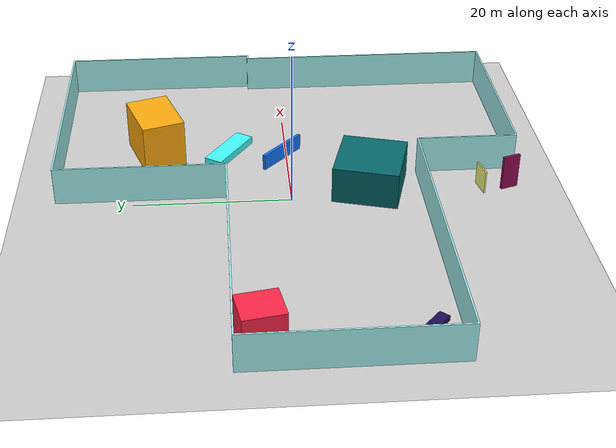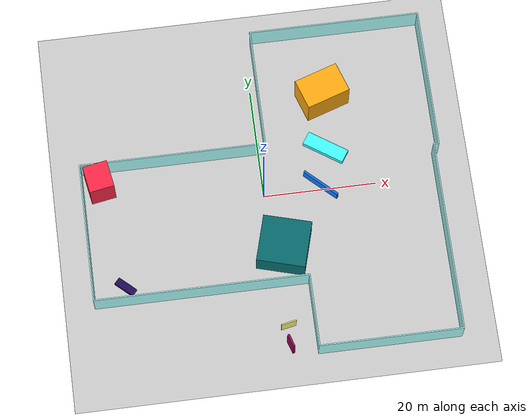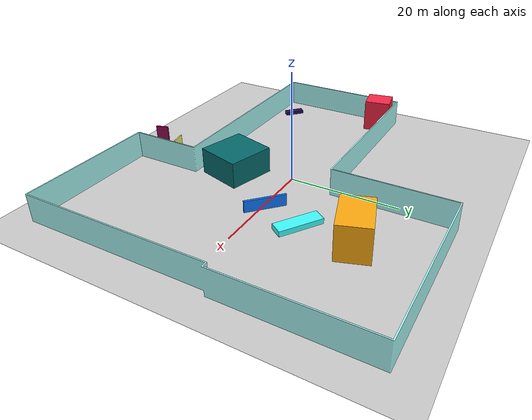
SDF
<?xml version="1.0" ?>
<sdf version="1.6">
  <world name="default">
    <atmosphere type="adiabatic"/>
    <wind>
      <linear_velocity>0 0 0</linear_velocity>
    </wind>
    <physics name="default_physics" default="1" type="ode">
      <max_step_size>0.001</max_step_size>
      <real_time_factor>1.0</real_time_factor>
      <real_time_update_rate>1000.0</real_time_update_rate>
      <max_contacts>20</max_contacts>
      <ode>
        <solver>
          <min_step_size>0.0001</min_step_size>
          <iters>50</iters>
          <sor>1.3</sor>
          <type>quick</type>
          <precon_iters>0</precon_iters>
          <use_dynamic_moi_rescaling>0</use_dynamic_moi_rescaling>
          <friction_model>pyramid_model</friction_model>
        </solver>
        <constraints>
          <cfm>0.0</cfm>
          <erp>0.2</erp>
          <contact_surface_layer>0.001</contact_surface_layer>
          <contact_max_correcting_vel>100.0</contact_max_correcting_vel>
        </constraints>
      </ode>
    </physics>
    <gravity>0 0 -9.8</gravity>
    <model name="box">
      <pose frame="">1.16517 -28.1166 2.31173 0 -0 0.312593</pose>
      <static>1</static>
      <self_collide>0</self_collide>
      <allow_auto_disable>0</allow_auto_disable>
      <link name="link">
        <kinematic>0</kinematic>
        <gravity>1</gravity>
        <self_collide>0</self_collide>
        <collision name="collision">
          <geometry>
            <box>
              <size>0.380834 2.30822 4.62346</size>
            </box>
          </geometry>
          <pose frame="">0 0 0 0 -0 0</pose>
          <max_contacts>20</max_contacts>
        </collision>
        <visual name="visual">
          <geometry>
            <box>
              <size>0.380834 2.30822 4.62346</size>
            </box>
          </geometry>
          <material>
            <ambient>0.568627 0.0352941 0.317647 1</ambient>
            <diffuse>0.5686274509803921 0.03529411764705882 0.3176470588235294 1</diffuse>
          </material>
          <pose frame="">0 0 0 0 -0 0</pose>
          <cast_shadows>1</cast_shadows>
          <transparency>0.0</transparency>
        </visual>
        <pose frame="">0 0 0 0 -0 0</pose>
      </link>
    </model>
    <model name="box_1">
      <pose frame="">12.0742 7.66756 0.490394 0 -0 2.54569</pose>
      <static>1</static>
      <self_collide>0</self_collide>
      <allow_auto_disable>0</allow_auto_disable>
      <link name="link">
        <kinematic>0</kinematic>
        <gravity>1</gravity>
        <self_collide>0</self_collide>
        <collision name="collision">
          <geometry>
            <box>
              <size>7.83673 2.48339 0.980787</size>
            </box>
          </geometry>
          <pose frame="">0 0 0 0 -0 0</pose>
          <max_contacts>20</max_contacts>
        </collision>
        <visual name="visual">
          <geometry>
            <box>
              <size>7.83673 2.48339 0.980787</size>
            </box>
          </geometry>
          <material>
            <ambient>0.254902 0.992157 0.996078 1</ambient>
            <diffuse>0.2549019607843137 0.9921568627450981 0.996078431372549 1</diffuse>
          </material>
          <pose frame="">0 0 0 0 -0 0</pose>
          <cast_shadows>1</cast_shadows>
          <transparency>0.0</transparency>
        </visual>
        <pose frame="">0 0 0 0 -0 0</pose>
      </link>
    </model>
    <model name="box_2">
      <pose frame="">-26.0763 -13.7036 0.32511 0 0 -0.735326</pose>
      <static>1</static>
      <self_collide>0</self_collide>
      <allow_auto_disable>0</allow_auto_disable>
      <link name="link">
        <kinematic>0</kinematic>
        <gravity>1</gravity>
        <self_collide>0</self_collide>
        <collision name="collision">
          <geometry>
            <box>
              <size>3.81848 1.34705 0.650221</size>
            </box>
          </geometry>
          <pose frame="">0 0 0 0 -0 0</pose>
          <max_contacts>20</max_contacts>
        </collision>
        <visual name="visual">
          <geometry>
            <box>
              <size>3.81848 1.34705 0.650221</size>
            </box>
          </geometry>
          <material>
            <ambient>0.121569 0.0352941 0.329412 1</ambient>
            <diffuse>0.12156862745098039 0.03529411764705882 0.32941176470588235 1</diffuse>
          </material>
          <pose frame="">0 0 0 0 -0 0</pose>
          <cast_shadows>1</cast_shadows>
          <transparency>0.0</transparency>
        </visual>
        <pose frame="">0 0 0 0 -0 0</pose>
      </link>
    </model>
    <model name="box_3">
      <pose frame="">-28.5979 5.2403 3.0925 0 0 -2.96575</pose>
      <static>1</static>
      <self_collide>0</self_collide>
      <allow_auto_disable>0</allow_auto_disable>
      <link name="link">
        <kinematic>0</kinematic>
        <gravity>1</gravity>
        <self_collide>0</self_collide>
        <collision name="collision">
          <geometry>
            <box>
              <size>4.42851 4.92219 6.18499</size>
            </box>
          </geometry>
          <pose frame="">0 0 0 0 -0 0</pose>
          <max_contacts>20</max_contacts>
        </collision>
        <visual name="visual">
          <geometry>
            <box>
              <size>4.42851 4.92219 6.18499</size>
            </box>
          </geometry>
          <material>
            <ambient>0.988235 0.14902 0.278431 1</ambient>
            <diffuse>0.9882352941176471 0.14901960784313725 0.2784313725490196 1</diffuse>
          </material>
          <pose frame="">0 0 0 0 -0 0</pose>
          <cast_shadows>1</cast_shadows>
          <transparency>0.0</transparency>
        </visual>
        <pose frame="">0 0 0 0 -0 0</pose>
      </link>
    </model>
    <model name="box_4">
      <pose frame="">1.23572 -24.4384 1.53993 0 -0 1.76196</pose>
      <static>1</static>
      <self_collide>0</self_collide>
      <allow_auto_disable>0</allow_auto_disable>
      <link name="link">
        <kinematic>0</kinematic>
        <gravity>1</gravity>
        <self_collide>0</self_collide>
        <collision name="collision">
          <geometry>
            <box>
              <size>0.196484 2.71637 3.07986</size>
            </box>
          </geometry>
          <pose frame="">0 0 0 0 -0 0</pose>
          <max_contacts>20</max_contacts>
        </collision>
        <visual name="visual">
          <geometry>
            <box>
              <size>0.196484 2.71637 3.07986</size>
            </box>
          </geometry>
          <material>
            <ambient>0.988235 0.988235 0.505882 1</ambient>
            <diffuse>0.9882352941176471 0.9882352941176471 0.5058823529411764 1</diffuse>
          </material>
          <pose frame="">0 0 0 0 -0 0</pose>
          <cast_shadows>1</cast_shadows>
          <transparency>0.0</transparency>
        </visual>
        <pose frame="">0 0 0 0 -0 0</pose>
      </link>
    </model>
    <model name="box_5">
      <pose frame="">12.6515 17.3217 3.17198 0 -0 0.321354</pose>
      <static>1</static>
      <self_collide>0</self_collide>
      <allow_auto_disable>0</allow_auto_disable>
      <link name="link">
        <kinematic>0</kinematic>
        <gravity>1</gravity>
        <self_collide>0</self_collide>
        <collision name="collision">
          <geometry>
            <box>
              <size>8.06158 5.58226 6.34396</size>
            </box>
          </geometry>
          <pose frame="">0 0 0 0 -0 0</pose>
          <max_contacts>20</max_contacts>
        </collision>
        <visual name="visual">
          <geometry>
            <box>
              <size>8.06158 5.58226 6.34396</size>
            </box>
          </geometry>
          <material>
            <ambient>1 0.670588 0.0588235 1</ambient>
            <diffuse>1.0 0.6705882352941176 0.058823529411764705 1</diffuse>
          </material>
          <pose frame="">0 0 0 0 -0 0</pose>
          <cast_shadows>1</cast_shadows>
          <transparency>0.0</transparency>
        </visual>
        <pose frame="">0 0 0 0 -0 0</pose>
      </link>
    </model>
    <model name="box_6">
      <pose frame="">2.27541 -10.2049 2.41161 0 -0 2.86556</pose>
      <static>1</static>
      <self_collide>0</self_collide>
      <allow_auto_disable>0</allow_auto_disable>
      <link name="link">
        <kinematic>0</kinematic>
        <gravity>1</gravity>
        <self_collide>0</self_collide>
        <collision name="collision">
          <geometry>
            <box>
              <size>8.60476 8.37514 4.82322</size>
            </box>
          </geometry>
          <pose frame="">0 0 0 0 -0 0</pose>
          <max_contacts>20</max_contacts>
        </collision>
        <visual name="visual">
          <geometry>
            <box>
              <size>8.60476 8.37514 4.82322</size>
            </box>
          </geometry>
          <material>
            <ambient>0.0196078 0.411765 0.419608 1</ambient>
            <diffuse>0.0196078431372549 0.4117647058823529 0.4196078431372549 1</diffuse>
          </material>
          <pose frame="">0 0 0 0 -0 0</pose>
          <cast_shadows>1</cast_shadows>
          <transparency>0.0</transparency>
        </visual>
        <pose frame="">0 0 0 0 -0 0</pose>
      </link>
    </model>
    <model name="box_7">
      <pose frame="">10.2558 0.635654 1.063 0 -0 2.38675</pose>
      <static>1</static>
      <self_collide>0</self_collide>
      <allow_auto_disable>0</allow_auto_disable>
      <link name="link">
        <kinematic>0</kinematic>
        <gravity>1</gravity>
        <self_collide>0</self_collide>
        <collision name="collision">
          <geometry>
            <box>
              <size>7.27208 0.409719 2.12599</size>
            </box>
          </geometry>
          <pose frame="">0 0 0 0 -0 0</pose>
          <max_contacts>20</max_contacts>
        </collision>
        <visual name="visual">
          <geometry>
            <box>
              <size>7.27208 0.409719 2.12599</size>
            </box>
          </geometry>
          <material>
            <ambient>0.0509804 0.458824 0.972549 1</ambient>
            <diffuse>0.050980392156862744 0.4588235294117647 0.9725490196078431 1</diffuse>
          </material>
          <pose frame="">0 0 0 0 -0 0</pose>
          <cast_shadows>1</cast_shadows>
          <transparency>0.0</transparency>
        </visual>
        <pose frame="">0 0 0 0 -0 0</pose>
      </link>
    </model>
    <include>
      <uri>model://test_0_walls</uri>
      <pose frame="">0 0 2.5 0 -0 0</pose>
      <name>test_0_walls</name>
      <static>1</static>
    </include>
    <include>
      <uri>model://ground_plane</uri>
      <pose frame="">0 0 0 0 -0 0</pose>
      <name>ground_plane</name>
      <static>1</static>
    </include>
    <include>
      <uri>model://ground_plane</uri>
    </include>
    <include>
      <uri>model://sun</uri>
    </include>
  </world>
</sdf>

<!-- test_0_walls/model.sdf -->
<sdf version="1.6">
  <model name="test_0_walls">
    <pose frame="">0 0 2.5 0 -0 0</pose>
    <static>1</static>
    <self_collide>0</self_collide>
    <allow_auto_disable>0</allow_auto_disable>
    <link name="mesh">
      <kinematic>0</kinematic>
      <gravity>1</gravity>
      <self_collide>0</self_collide>
      <collision name="collision">
        <geometry>
          <mesh>
            <uri>file:///home/agusmazzeo/Documents/UTN/Proyecto/Frontier-Exploration-with-a-prior/Notebooks/files/models/test_0_walls/meshes/cRJADqRszz.stl</uri>
            <scale>1 1 1</scale>
          </mesh>
        </geometry>
        <pose frame="">-0.707058 3.6214 -2.5 0 -0 0</pose>
        <max_contacts>20</max_contacts>
      </collision>
      <visual name="visual">
        <geometry>
          <mesh>
            <uri>file:///home/agusmazzeo/Documents/UTN/Proyecto/Frontier-Exploration-with-a-prior/Notebooks/files/models/test_0_walls/meshes/SCRXsAFWDL.stl</uri>
            <scale>1 1 1</scale>
          </mesh>
        </geometry>
        <material>
          <ambient>0.67451 1 0.988235 1</ambient>
          <diffuse>0.6745098039215687 1.0 0.9882352941176471 1</diffuse>
        </material>
        <pose frame="">-0.707058 3.6214 -2.5 0 -0 0</pose>
        <cast_shadows>1</cast_shadows>
        <transparency>0.0</transparency>
      </visual>
      <pose frame="">0 0 0 0 -0 0</pose>
    </link>
  </model>
</sdf>
